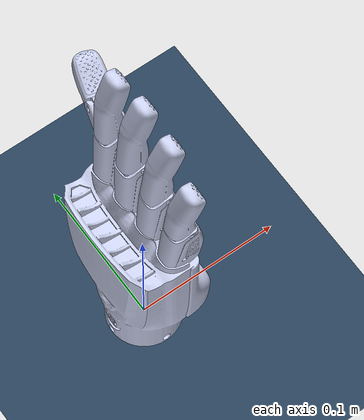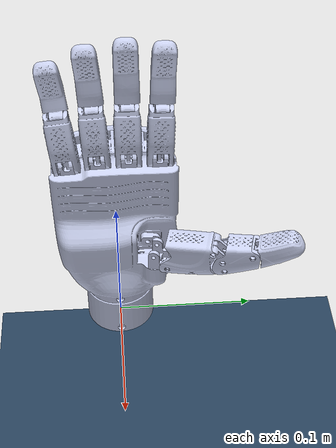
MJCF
<mujoco model="right_inspire scene">
  <include file="right_inspire.xml"/>

  <statistic center="0 0 0" extent="0.3"/>

  <visual>
    <rgba haze="0.15 0.25 0.35 1"/>
    <quality shadowsize="8192"/>
    <global azimuth="220" elevation="-40"/>
  </visual>

  <asset>
    <texture type="skybox" builtin="gradient" rgb1="0.3 0.5 0.7" rgb2="0 0 0" width="512" height="3072"/>
    <texture type="2d" name="groundplane" builtin="checker" mark="edge" rgb1="0.2 0.3 0.4" rgb2="0.1 0.2 0.3"
      markrgb="0.8 0.8 0.8" width="300" height="300"/>
    <material name="groundplane" texture="groundplane" texuniform="true" texrepeat="5 5" reflectance="0.2"/>
  </asset>

  <worldbody>
    <light pos="0 0 1"/>
    <light pos="0.3 0 1.5" dir="0 0 -1" directional="true"/>
    <geom name="floor" pos="0 0 -0.1" size="0 0 0.05" type="plane" material="groundplane"/>
  </worldbody>
</mujoco>

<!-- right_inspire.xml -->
<mujoco model="right_inspire">
  <compiler angle="radian" meshdir="./right_meshes/" texturedir="./right_meshes/"/>
  <!-- 1. fix actuator range and settings. 2. check equality constraints for all linkages. 3. experimentally verify joint limits.  -->

  <asset>
    <mesh name="base_link" file="base_link.STL"/>
    <mesh name="right_thumb_swing" file="right_thumb_swing.STL"/>
    <mesh name="right_thumb_1" file="right_thumb_1.STL"/>
    <mesh name="right_thumb_2" file="right_thumb_2.STL"/>
    <mesh name="right_thumb_3" file="right_thumb_3.STL"/>
    <mesh name="right_index_1" file="right_index_1.STL"/>
    <mesh name="right_index_2" file="right_index_2.STL"/>
    <mesh name="right_middle_1" file="right_middle_1.STL"/>
    <mesh name="right_middle_2" file="right_middle_2.STL"/>
    <mesh name="right_ring_1" file="right_ring_1.STL"/>
    <mesh name="right_ring_2" file="right_ring_2.STL"/>
    <mesh name="right_little_1" file="right_little_1.STL"/>
    <mesh name="right_little_2" file="right_little_2.STL"/>
  </asset>

  <worldbody>
    <body name="palm">
      <geom name="base_link_collision" pos="0 0 0" quat="0.000563312 0.707388 -0.706825 -0.000562864" type="mesh" rgba="0.792157 0.819608 0.933333 1" mesh="base_link"/>
    </body>
    <body name="right_thumb_swing" pos="0.0211441 0.0268832 0.0707164" quat="0.7068220018146171 0.0005602700014383757 0.0005607120014395105 0.707391001816078">
      <inertial pos="0.00184773 -0.000437179 0.00313589" quat="0.686668 0.629357 -0.32235 0.168782" mass="0.00115519" diaginertia="6.58579e-08 5.87769e-08 3.77927e-08"/>
      <joint name="right_thumb_swing_joint" pos="0 0 0" axis="0 0 -1" range="-0.18 1.233"  springdamper="0.1 0.5"/>
      <geom name="right_thumb_swing_collision" type="mesh" rgba="0.792157 0.819608 0.933333 1" mesh="right_thumb_swing"/>
      <body name="right_thumb_1" pos="0.007567 -0.01145 0.00125" quat="0.70234 0.702342 -0.0819566 -0.0819563">
        <inertial pos="0.0167591 0.00921112 -0.00940298" quat="0.190246 0.681372 0.19063 -0.680588" mass="0.03" diaginertia="1.43635e-06 1.18366e-06 9.93462e-07"/>
        <joint name="right_thumb_1_joint" pos="0 0 0" axis="0.193569 0 0.981087" range="0.04 0.92" />
        <geom name="right_thumb_1_collision" type="mesh" rgba="0.792157 0.819608 0.933333 1" mesh="right_thumb_1"/>
        <body name="right_thumb_2" pos="0.039173 0.011958 -0.00085">
          <inertial pos="0.0101809 0.00225977 -0.00854143" quat="0.667011 0.668935 -0.232818 -0.231121" mass="0.02" diaginertia="5.04922e-07 4.38694e-07 3.77732e-07"/>
          <joint name="right_thumb_2_joint" pos="0 0 0" axis="0.193569 0 0.981087" range="0 0.4719" />
          <geom name="right_thumb_2_collision" type="mesh" rgba="0.792157 0.819608 0.933333 1" mesh="right_thumb_2"/>
          <body name="right_thumb_3" pos="0.020827 0.0074327 0.0002">
            <inertial pos="0.0168089 0.00363292 -0.00874331" quat="0.610171 0.609003 -0.357713 -0.358953" mass="0.014" diaginertia="9.67936e-07 9.25704e-07 4.39366e-07"/>
            <joint name="right_thumb_3_joint" pos="0 0 0" axis="0.193569 0 0.981087" range="0 0.570"/>
            <geom name="right_thumb_3_collision" type="mesh" rgba="0.792157 0.819608 0.933333 1" mesh="right_thumb_3"/>
          </body>
        </body>
      </body>
    </body>
    <body name="right_index_1" pos="0.000845413 0.0398283 0.156359" quat="0.7193364 0.6946613 0.0008121 -0.0002848 ">
      <inertial pos="0.00284972 0.0121607 0.00779933" quat="0.534277 0.463116 -0.534291 0.463254" mass="0.00719948" diaginertia="1.32913e-06 1.28613e-06 5.76926e-07"/>
      <joint name="right_index_1_joint" pos="0 0 0" axis="0 0 -1" range="-0.089 1.4516" />
      <geom name="right_index_1_collision" type="mesh" rgba="0.792157 0.819608 0.933333 1" mesh="right_index_1"/>
      <body name="right_index_2" pos="0.0043282 0.032488 -0.0003">
        <inertial pos="-0.00158838 0.0256545 0.00749252" quat="0.705149 0.704441 -0.0553754 -0.0588394" mass="0.00968687" diaginertia="2.34233e-06 2.30247e-06 3.04577e-07"/>
        <joint name="right_index_2_joint" pos="0 0 0" axis="0 0 -1" range="-0.21 1.482" />
        <geom name="right_index_2_collision" type="mesh" rgba="0.792157 0.819608 0.933333 1" mesh="right_index_2"/>
      </body>
    </body>
    <body name="right_middle_1" pos="0.000829248 0.0182493 0.156999" quat="0.7071056 0.7071074 0.0008459 -0.0002802">
      <inertial pos="0.00229271 0.0122779 0.00779932" quat="0.523583 0.475172 -0.523598 0.475307" mass="0.0071995" diaginertia="1.32913e-06 1.28614e-06 5.76927e-07"/>
      <joint name="right_middle_1_joint" pos="0 0 0" axis="0 0 -1" range="-0.089 1.4516" />
      <geom name="right_middle_1_collision" type="mesh" rgba="0.792157 0.819608 0.933333 1" mesh="right_middle_1"/>
      <body name="right_middle_2" pos="0.0028436 0.032651 -0.0003">
        <inertial pos="-7.51984e-05 0.0274488 0.0075006" quat="0.703925 0.703913 -0.0670976 -0.067032" mass="0.0104612" diaginertia="2.84801e-06 2.80723e-06 3.32779e-07"/>
        <joint name="right_middle_2_joint" pos="0 0 0" axis="0 0 -1" range="-0.21 1.482" />
        <geom name="right_middle_2_collision" type="mesh" rgba="0.792157 0.819608 0.933333 1" mesh="right_middle_2"/>
      </body>
    </body>
    <body name="right_ring_1" pos="0.000811847 -0.00338235 0.156889" quat="0.6883389  0.7253887  0.0008989 -0.0002719">
      <inertial pos="0.0024053 0.0122563 0.00779932" quat="0.525759 0.472763 -0.525774 0.4729" mass="0.0071995" diaginertia="1.32913e-06 1.28613e-06 5.76927e-07"/>
      <joint name="right_ring_1_joint" pos="0 0 0" axis="0 0 -1" range="-0.089 1.4516" />
      <geom name="right_ring_1_collision" type="mesh" rgba="0.792157 0.819608 0.933333 1" mesh="right_ring_1"/>
      <body name="right_ring_2" pos="0.0031431 0.032624 -0.0003">
        <inertial pos="-0.000667145 0.0256949 0.00749253" quat="0.703979 0.703335 -0.0679937 -0.0714872" mass="0.00968685" diaginertia="2.34233e-06 2.30247e-06 3.04576e-07"/>
        <joint name="right_ring_2_joint" pos="0 0 0" axis="0 0 -1" range="-0.21 1.482"/>
        <geom name="right_ring_2_collision" type="mesh" rgba="0.792157 0.819608 0.933333 1" mesh="right_ring_2"/>
      </body>
    </body>
    <body name="right_little_1" pos="0.000789845 -0.0247726 0.153769" quat="0.6691368  0.7431386  0.0009545 -0.0002617">
      <inertial pos="0.0023301 0.0122708 0.00779932" quat="0.524305 0.474372 -0.524323 0.474511" mass="0.0071995" diaginertia="1.32913e-06 1.28613e-06 5.76927e-07"/>
      <joint name="right_little_1_joint" pos="0 0 0" axis="0 0 -1" range="-0.089 1.4516" />
      <geom name="right_little_1_collision" type="mesh" rgba="0.792157 0.819608 0.933333 1" mesh="right_little_1"/>
      <body name="right_little_2" pos="0.002943 0.032643 -0.0003">
        <inertial pos="-0.00241294 0.020835 0.00750031" quat="0.704263 0.704254 -0.0634076 -0.0634084" mass="0.00759259" diaginertia="1.28164e-06 1.23907e-06 2.26499e-07"/>
        <joint name="right_little_2_joint" pos="0 0 0" axis="0 0 -1" range="-0.21 1.482" />
        <geom name="right_little_2_collision" type="mesh" rgba="0.792157 0.819608 0.933333 1" mesh="right_little_2"/>
      </body>
    </body>
  </worldbody>
  <equality>
    <joint name = "index_linkage" active="true" joint1="right_index_1_joint" joint2="right_index_2_joint" polycoef="-0.0126 .851 -.00404 0.0866"/>
  </equality>
  <equality>
    <joint name = "middle_linkage" active="true" joint1="right_middle_1_joint" joint2="right_middle_2_joint" polycoef="-0.0126 .851 -.00404 0.0866"/>
  </equality>
  <equality>
    <joint name="ring_linkage" active="true" joint1="right_ring_1_joint" joint2="right_ring_2_joint" polycoef="-0.0126 .851 -.00404 0.0866"/>
  </equality>
  <equality>
    <joint name="little_linkage" active="true" joint1="right_little_1_joint" joint2="right_little_2_joint" polycoef="-0.0126 .851 -.00404 0.0866"/>
  </equality>
  <equality>
    <joint name="thumb_1-2_linkage" active="true" joint1="right_thumb_2_joint" joint2="right_thumb_1_joint" polycoef="6.581 -28.966 46.134 -31.5 8.007" />
  </equality>
  <equality>
    <joint name="thumb_1-3_linkage" active="true" joint1="right_thumb_3_joint" joint2="right_thumb_1_joint" polycoef="-0.089 -0.005 0.424 0 0" />
  </equality>
  <actuator>
    <position name="right_thumb_swing_motor" joint="right_thumb_swing_joint" ctrllimited="true" ctrlrange="-0.18 1.233" gear="1" />
    <position name="right_thumb_1_motor" joint="right_thumb_1_joint" ctrllimited="true" ctrlrange="0.5376 1.2483" gear="1" />
    <position name="right_index_1_motor" joint="right_index_1_joint" ctrllimited="true" ctrlrange="-0.089727 1.66" gear="1" />
    <position name="right_middle_1_motor" joint="right_middle_1_joint" ctrllimited="true" ctrlrange="-0.089727 1.66" gear="1" />
    <position name="right_ring_1_motor" joint="right_ring_1_joint" ctrllimited="true" ctrlrange="-0.089727 1.66" gear="1" />
    <position name="right_little_1_motor" joint="right_little_1_joint" ctrllimited="true" ctrlrange="-0.089727 1.66" gear="1" />
  </actuator>
  <contact>
    <exclude name="right_thumb_1" body1="palm" body2="right_thumb_1"/>
    <exclude name="right_thumb_swing" body1="palm" body2="right_thumb_swing"/>
    <exclude name="right_thumb_1_swing" body1="right_thumb_1" body2="right_thumb_swing" />
    <exclude name="right_index_1" body1="palm" body2="right_index_1" />
    <exclude name ="right_middle_1" body1="palm" body2="right_middle_1" />
    <exclude name ="right_ring_1" body1="palm" body2="right_ring_1" />
    <exclude name="right_little_1" body1="palm" body2="right_little_1" />
  </contact>
</mujoco>
